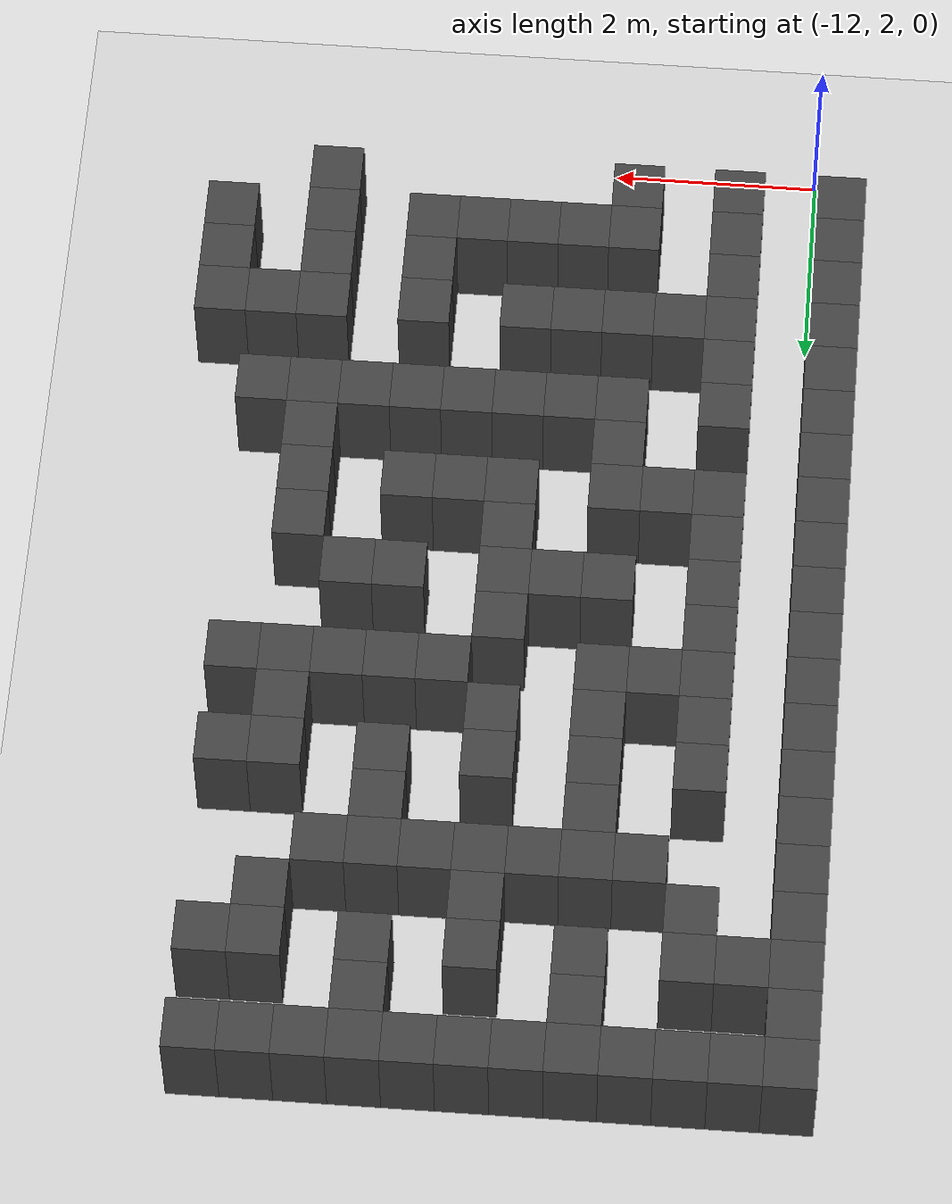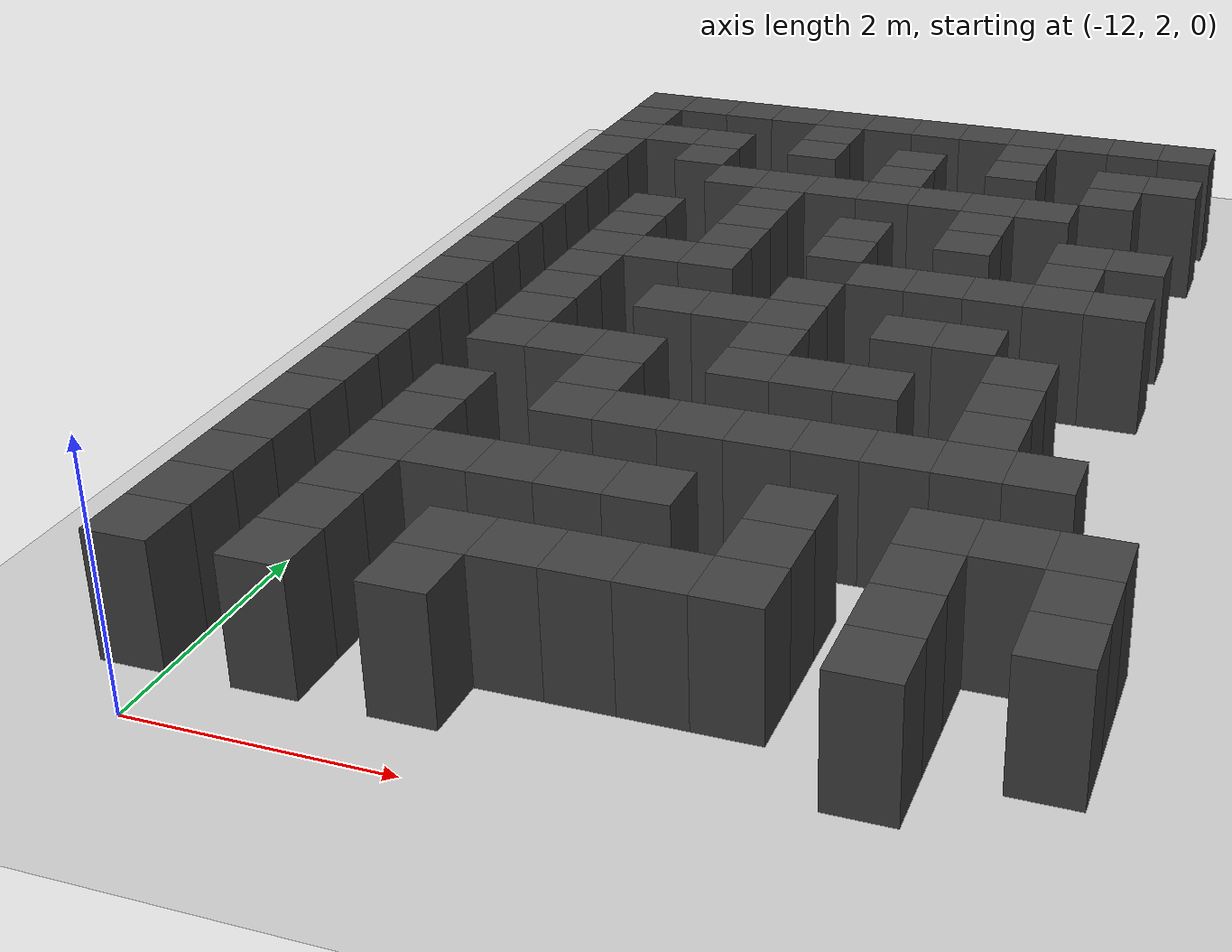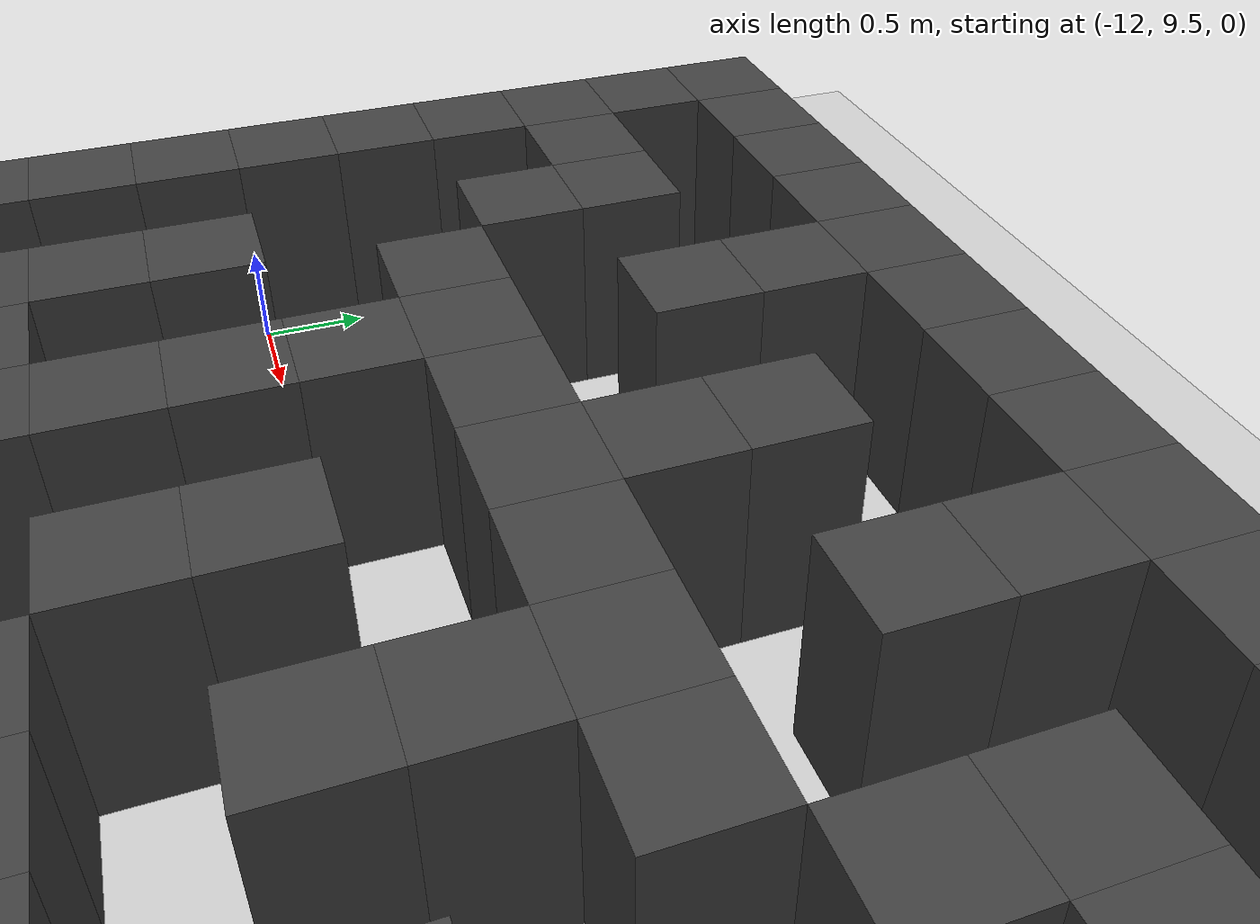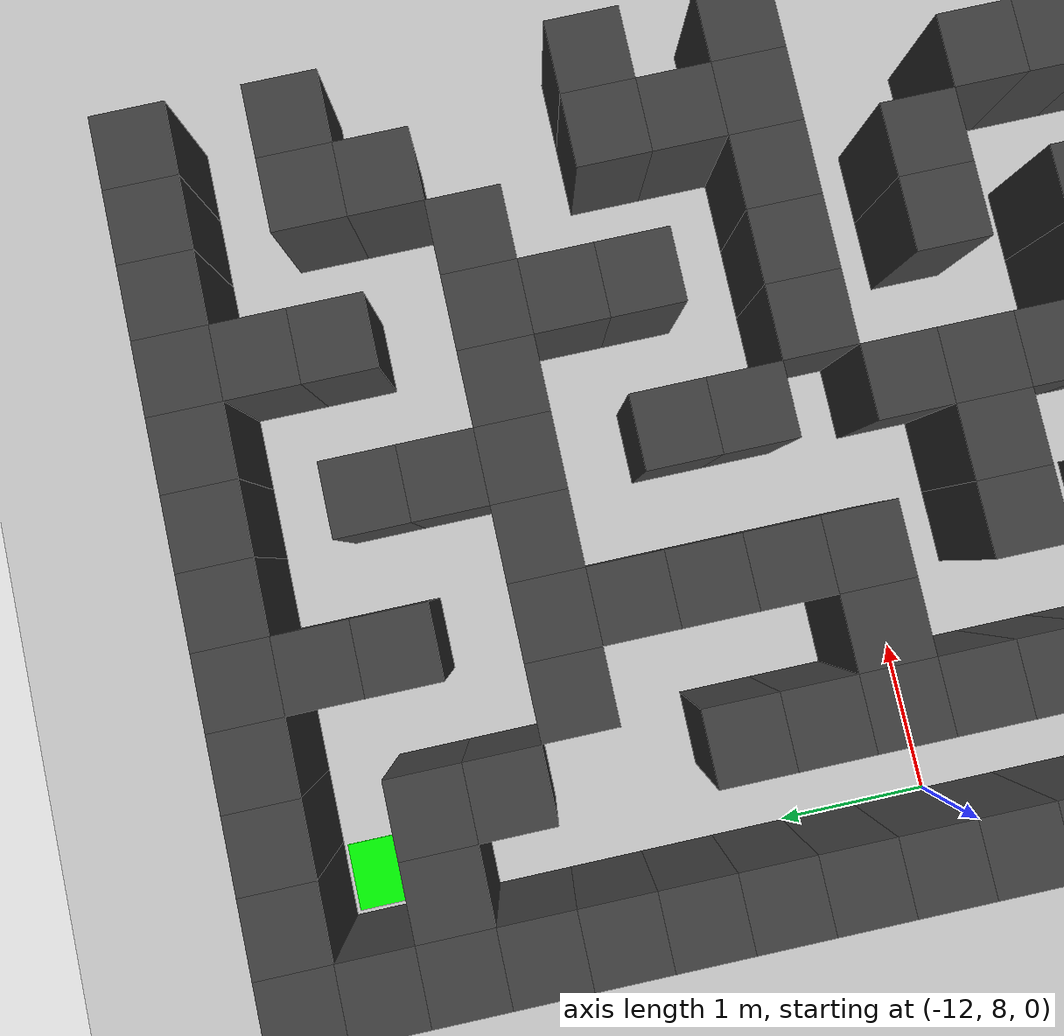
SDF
<sdf version="1.7">
 <world name="map_16783">
  <model name="ground_plane">
   <static>true</static>
   <link name="link">
    <collision name="collision">
     <geometry><plane><normal>0 0 1</normal><size>200 200</size></plane></geometry>
    </collision>
    <visual name="visual">
     <geometry><plane><normal>0 0 1</normal><size>200 200</size></plane></geometry>
     <material><ambient>0.8 0.8 0.8 1</ambient><diffuse>0.8 0.8 0.8 1</diffuse></material>
    </visual>
   </link>
  </model>
  <model name="maze_environment">
   <static>true</static>
   <link name="wall_0">
    <pose>-12.250 12.250 0.500 0 0 0</pose>
    <collision name="col"><geometry><box><size>0.5 0.5 1.0</size></box></geometry></collision>
    <visual name="vis">
     <geometry><box><size>0.5 0.5 1.0</size></box></geometry>
     <material><ambient>0.15 0.15 0.15 1</ambient><diffuse>0.25 0.25 0.25 1</diffuse></material>
    </visual>
   </link>
   <link name="wall_1">
    <pose>-11.750 12.250 0.500 0 0 0</pose>
    <collision name="col"><geometry><box><size>0.5 0.5 1.0</size></box></geometry></collision>
    <visual name="vis">
     <geometry><box><size>0.5 0.5 1.0</size></box></geometry>
     <material><ambient>0.15 0.15 0.15 1</ambient><diffuse>0.25 0.25 0.25 1</diffuse></material>
    </visual>
   </link>
   <link name="wall_2">
    <pose>-11.250 12.250 0.500 0 0 0</pose>
    <collision name="col"><geometry><box><size>0.5 0.5 1.0</size></box></geometry></collision>
    <visual name="vis">
     <geometry><box><size>0.5 0.5 1.0</size></box></geometry>
     <material><ambient>0.15 0.15 0.15 1</ambient><diffuse>0.25 0.25 0.25 1</diffuse></material>
    </visual>
   </link>
   <link name="wall_3">
    <pose>-10.750 12.250 0.500 0 0 0</pose>
    <collision name="col"><geometry><box><size>0.5 0.5 1.0</size></box></geometry></collision>
    <visual name="vis">
     <geometry><box><size>0.5 0.5 1.0</size></box></geometry>
     <material><ambient>0.15 0.15 0.15 1</ambient><diffuse>0.25 0.25 0.25 1</diffuse></material>
    </visual>
   </link>
   <link name="wall_4">
    <pose>-10.250 12.250 0.500 0 0 0</pose>
    <collision name="col"><geometry><box><size>0.5 0.5 1.0</size></box></geometry></collision>
    <visual name="vis">
     <geometry><box><size>0.5 0.5 1.0</size></box></geometry>
     <material><ambient>0.15 0.15 0.15 1</ambient><diffuse>0.25 0.25 0.25 1</diffuse></material>
    </visual>
   </link>
   <link name="wall_5">
    <pose>-9.750 12.250 0.500 0 0 0</pose>
    <collision name="col"><geometry><box><size>0.5 0.5 1.0</size></box></geometry></collision>
    <visual name="vis">
     <geometry><box><size>0.5 0.5 1.0</size></box></geometry>
     <material><ambient>0.15 0.15 0.15 1</ambient><diffuse>0.25 0.25 0.25 1</diffuse></material>
    </visual>
   </link>
   <link name="wall_6">
    <pose>-9.250 12.250 0.500 0 0 0</pose>
    <collision name="col"><geometry><box><size>0.5 0.5 1.0</size></box></geometry></collision>
    <visual name="vis">
     <geometry><box><size>0.5 0.5 1.0</size></box></geometry>
     <material><ambient>0.15 0.15 0.15 1</ambient><diffuse>0.25 0.25 0.25 1</diffuse></material>
    </visual>
   </link>
   <link name="wall_7">
    <pose>-8.750 12.250 0.500 0 0 0</pose>
    <collision name="col"><geometry><box><size>0.5 0.5 1.0</size></box></geometry></collision>
    <visual name="vis">
     <geometry><box><size>0.5 0.5 1.0</size></box></geometry>
     <material><ambient>0.15 0.15 0.15 1</ambient><diffuse>0.25 0.25 0.25 1</diffuse></material>
    </visual>
   </link>
   <link name="wall_8">
    <pose>-8.250 12.250 0.500 0 0 0</pose>
    <collision name="col"><geometry><box><size>0.5 0.5 1.0</size></box></geometry></collision>
    <visual name="vis">
     <geometry><box><size>0.5 0.5 1.0</size></box></geometry>
     <material><ambient>0.15 0.15 0.15 1</ambient><diffuse>0.25 0.25 0.25 1</diffuse></material>
    </visual>
   </link>
   <link name="wall_9">
    <pose>-7.750 12.250 0.500 0 0 0</pose>
    <collision name="col"><geometry><box><size>0.5 0.5 1.0</size></box></geometry></collision>
    <visual name="vis">
     <geometry><box><size>0.5 0.5 1.0</size></box></geometry>
     <material><ambient>0.15 0.15 0.15 1</ambient><diffuse>0.25 0.25 0.25 1</diffuse></material>
    </visual>
   </link>
   <link name="wall_10">
    <pose>-7.250 12.250 0.500 0 0 0</pose>
    <collision name="col"><geometry><box><size>0.5 0.5 1.0</size></box></geometry></collision>
    <visual name="vis">
     <geometry><box><size>0.5 0.5 1.0</size></box></geometry>
     <material><ambient>0.15 0.15 0.15 1</ambient><diffuse>0.25 0.25 0.25 1</diffuse></material>
    </visual>
   </link>
   <link name="wall_11">
    <pose>-6.750 12.250 0.500 0 0 0</pose>
    <collision name="col"><geometry><box><size>0.5 0.5 1.0</size></box></geometry></collision>
    <visual name="vis">
     <geometry><box><size>0.5 0.5 1.0</size></box></geometry>
     <material><ambient>0.15 0.15 0.15 1</ambient><diffuse>0.25 0.25 0.25 1</diffuse></material>
    </visual>
   </link>
   <link name="wall_50">
    <pose>-12.250 11.750 0.500 0 0 0</pose>
    <collision name="col"><geometry><box><size>0.5 0.5 1.0</size></box></geometry></collision>
    <visual name="vis">
     <geometry><box><size>0.5 0.5 1.0</size></box></geometry>
     <material><ambient>0.15 0.15 0.15 1</ambient><diffuse>0.25 0.25 0.25 1</diffuse></material>
    </visual>
   </link>
   <link name="wall_51">
    <pose>-10.250 11.750 0.500 0 0 0</pose>
    <collision name="col"><geometry><box><size>0.5 0.5 1.0</size></box></geometry></collision>
    <visual name="vis">
     <geometry><box><size>0.5 0.5 1.0</size></box></geometry>
     <material><ambient>0.15 0.15 0.15 1</ambient><diffuse>0.25 0.25 0.25 1</diffuse></material>
    </visual>
   </link>
   <link name="wall_52">
    <pose>-8.250 11.750 0.500 0 0 0</pose>
    <collision name="col"><geometry><box><size>0.5 0.5 1.0</size></box></geometry></collision>
    <visual name="vis">
     <geometry><box><size>0.5 0.5 1.0</size></box></geometry>
     <material><ambient>0.15 0.15 0.15 1</ambient><diffuse>0.25 0.25 0.25 1</diffuse></material>
    </visual>
   </link>
   <link name="wall_60">
    <pose>-12.250 11.250 0.500 0 0 0</pose>
    <collision name="col"><geometry><box><size>0.5 0.5 1.0</size></box></geometry></collision>
    <visual name="vis">
     <geometry><box><size>0.5 0.5 1.0</size></box></geometry>
     <material><ambient>0.15 0.15 0.15 1</ambient><diffuse>0.25 0.25 0.25 1</diffuse></material>
    </visual>
   </link>
   <link name="wall_61">
    <pose>-11.750 11.250 0.500 0 0 0</pose>
    <collision name="col"><geometry><box><size>0.5 0.5 1.0</size></box></geometry></collision>
    <visual name="vis">
     <geometry><box><size>0.5 0.5 1.0</size></box></geometry>
     <material><ambient>0.15 0.15 0.15 1</ambient><diffuse>0.25 0.25 0.25 1</diffuse></material>
    </visual>
   </link>
   <link name="wall_62">
    <pose>-11.250 11.250 0.500 0 0 0</pose>
    <collision name="col"><geometry><box><size>0.5 0.5 1.0</size></box></geometry></collision>
    <visual name="vis">
     <geometry><box><size>0.5 0.5 1.0</size></box></geometry>
     <material><ambient>0.15 0.15 0.15 1</ambient><diffuse>0.25 0.25 0.25 1</diffuse></material>
    </visual>
   </link>
   <link name="wall_63">
    <pose>-10.250 11.250 0.500 0 0 0</pose>
    <collision name="col"><geometry><box><size>0.5 0.5 1.0</size></box></geometry></collision>
    <visual name="vis">
     <geometry><box><size>0.5 0.5 1.0</size></box></geometry>
     <material><ambient>0.15 0.15 0.15 1</ambient><diffuse>0.25 0.25 0.25 1</diffuse></material>
    </visual>
   </link>
   <link name="wall_64">
    <pose>-9.250 11.250 0.500 0 0 0</pose>
    <collision name="col"><geometry><box><size>0.5 0.5 1.0</size></box></geometry></collision>
    <visual name="vis">
     <geometry><box><size>0.5 0.5 1.0</size></box></geometry>
     <material><ambient>0.15 0.15 0.15 1</ambient><diffuse>0.25 0.25 0.25 1</diffuse></material>
    </visual>
   </link>
   <link name="wall_65">
    <pose>-8.250 11.250 0.500 0 0 0</pose>
    <collision name="col"><geometry><box><size>0.5 0.5 1.0</size></box></geometry></collision>
    <visual name="vis">
     <geometry><box><size>0.5 0.5 1.0</size></box></geometry>
     <material><ambient>0.15 0.15 0.15 1</ambient><diffuse>0.25 0.25 0.25 1</diffuse></material>
    </visual>
   </link>
   <link name="wall_66">
    <pose>-7.250 11.250 0.500 0 0 0</pose>
    <collision name="col"><geometry><box><size>0.5 0.5 1.0</size></box></geometry></collision>
    <visual name="vis">
     <geometry><box><size>0.5 0.5 1.0</size></box></geometry>
     <material><ambient>0.15 0.15 0.15 1</ambient><diffuse>0.25 0.25 0.25 1</diffuse></material>
    </visual>
   </link>
   <link name="wall_67">
    <pose>-6.750 11.250 0.500 0 0 0</pose>
    <collision name="col"><geometry><box><size>0.5 0.5 1.0</size></box></geometry></collision>
    <visual name="vis">
     <geometry><box><size>0.5 0.5 1.0</size></box></geometry>
     <material><ambient>0.15 0.15 0.15 1</ambient><diffuse>0.25 0.25 0.25 1</diffuse></material>
    </visual>
   </link>
   <link name="wall_93">
    <pose>-12.250 10.750 0.500 0 0 0</pose>
    <collision name="col"><geometry><box><size>0.5 0.5 1.0</size></box></geometry></collision>
    <visual name="vis">
     <geometry><box><size>0.5 0.5 1.0</size></box></geometry>
     <material><ambient>0.15 0.15 0.15 1</ambient><diffuse>0.25 0.25 0.25 1</diffuse></material>
    </visual>
   </link>
   <link name="wall_94">
    <pose>-11.250 10.750 0.500 0 0 0</pose>
    <collision name="col"><geometry><box><size>0.5 0.5 1.0</size></box></geometry></collision>
    <visual name="vis">
     <geometry><box><size>0.5 0.5 1.0</size></box></geometry>
     <material><ambient>0.15 0.15 0.15 1</ambient><diffuse>0.25 0.25 0.25 1</diffuse></material>
    </visual>
   </link>
   <link name="wall_95">
    <pose>-9.250 10.750 0.500 0 0 0</pose>
    <collision name="col"><geometry><box><size>0.5 0.5 1.0</size></box></geometry></collision>
    <visual name="vis">
     <geometry><box><size>0.5 0.5 1.0</size></box></geometry>
     <material><ambient>0.15 0.15 0.15 1</ambient><diffuse>0.25 0.25 0.25 1</diffuse></material>
    </visual>
   </link>
   <link name="wall_96">
    <pose>-7.250 10.750 0.500 0 0 0</pose>
    <collision name="col"><geometry><box><size>0.5 0.5 1.0</size></box></geometry></collision>
    <visual name="vis">
     <geometry><box><size>0.5 0.5 1.0</size></box></geometry>
     <material><ambient>0.15 0.15 0.15 1</ambient><diffuse>0.25 0.25 0.25 1</diffuse></material>
    </visual>
   </link>
   <link name="wall_107">
    <pose>-12.250 10.250 0.500 0 0 0</pose>
    <collision name="col"><geometry><box><size>0.5 0.5 1.0</size></box></geometry></collision>
    <visual name="vis">
     <geometry><box><size>0.5 0.5 1.0</size></box></geometry>
     <material><ambient>0.15 0.15 0.15 1</ambient><diffuse>0.25 0.25 0.25 1</diffuse></material>
    </visual>
   </link>
   <link name="wall_108">
    <pose>-10.750 10.250 0.500 0 0 0</pose>
    <collision name="col"><geometry><box><size>0.5 0.5 1.0</size></box></geometry></collision>
    <visual name="vis">
     <geometry><box><size>0.5 0.5 1.0</size></box></geometry>
     <material><ambient>0.15 0.15 0.15 1</ambient><diffuse>0.25 0.25 0.25 1</diffuse></material>
    </visual>
   </link>
   <link name="wall_109">
    <pose>-10.250 10.250 0.500 0 0 0</pose>
    <collision name="col"><geometry><box><size>0.5 0.5 1.0</size></box></geometry></collision>
    <visual name="vis">
     <geometry><box><size>0.5 0.5 1.0</size></box></geometry>
     <material><ambient>0.15 0.15 0.15 1</ambient><diffuse>0.25 0.25 0.25 1</diffuse></material>
    </visual>
   </link>
   <link name="wall_110">
    <pose>-9.750 10.250 0.500 0 0 0</pose>
    <collision name="col"><geometry><box><size>0.5 0.5 1.0</size></box></geometry></collision>
    <visual name="vis">
     <geometry><box><size>0.5 0.5 1.0</size></box></geometry>
     <material><ambient>0.15 0.15 0.15 1</ambient><diffuse>0.25 0.25 0.25 1</diffuse></material>
    </visual>
   </link>
   <link name="wall_111">
    <pose>-9.250 10.250 0.500 0 0 0</pose>
    <collision name="col"><geometry><box><size>0.5 0.5 1.0</size></box></geometry></collision>
    <visual name="vis">
     <geometry><box><size>0.5 0.5 1.0</size></box></geometry>
     <material><ambient>0.15 0.15 0.15 1</ambient><diffuse>0.25 0.25 0.25 1</diffuse></material>
    </visual>
   </link>
   <link name="wall_112">
    <pose>-8.750 10.250 0.500 0 0 0</pose>
    <collision name="col"><geometry><box><size>0.5 0.5 1.0</size></box></geometry></collision>
    <visual name="vis">
     <geometry><box><size>0.5 0.5 1.0</size></box></geometry>
     <material><ambient>0.15 0.15 0.15 1</ambient><diffuse>0.25 0.25 0.25 1</diffuse></material>
    </visual>
   </link>
   <link name="wall_113">
    <pose>-8.250 10.250 0.500 0 0 0</pose>
    <collision name="col"><geometry><box><size>0.5 0.5 1.0</size></box></geometry></collision>
    <visual name="vis">
     <geometry><box><size>0.5 0.5 1.0</size></box></geometry>
     <material><ambient>0.15 0.15 0.15 1</ambient><diffuse>0.25 0.25 0.25 1</diffuse></material>
    </visual>
   </link>
   <link name="wall_114">
    <pose>-7.750 10.250 0.500 0 0 0</pose>
    <collision name="col"><geometry><box><size>0.5 0.5 1.0</size></box></geometry></collision>
    <visual name="vis">
     <geometry><box><size>0.5 0.5 1.0</size></box></geometry>
     <material><ambient>0.15 0.15 0.15 1</ambient><diffuse>0.25 0.25 0.25 1</diffuse></material>
    </visual>
   </link>
   <link name="wall_142">
    <pose>-12.250 9.750 0.500 0 0 0</pose>
    <collision name="col"><geometry><box><size>0.5 0.5 1.0</size></box></geometry></collision>
    <visual name="vis">
     <geometry><box><size>0.5 0.5 1.0</size></box></geometry>
     <material><ambient>0.15 0.15 0.15 1</ambient><diffuse>0.25 0.25 0.25 1</diffuse></material>
    </visual>
   </link>
   <link name="wall_143">
    <pose>-10.250 9.750 0.500 0 0 0</pose>
    <collision name="col"><geometry><box><size>0.5 0.5 1.0</size></box></geometry></collision>
    <visual name="vis">
     <geometry><box><size>0.5 0.5 1.0</size></box></geometry>
     <material><ambient>0.15 0.15 0.15 1</ambient><diffuse>0.25 0.25 0.25 1</diffuse></material>
    </visual>
   </link>
   <link name="wall_144">
    <pose>-8.250 9.750 0.500 0 0 0</pose>
    <collision name="col"><geometry><box><size>0.5 0.5 1.0</size></box></geometry></collision>
    <visual name="vis">
     <geometry><box><size>0.5 0.5 1.0</size></box></geometry>
     <material><ambient>0.15 0.15 0.15 1</ambient><diffuse>0.25 0.25 0.25 1</diffuse></material>
    </visual>
   </link>
   <link name="wall_154">
    <pose>-12.250 9.250 0.500 0 0 0</pose>
    <collision name="col"><geometry><box><size>0.5 0.5 1.0</size></box></geometry></collision>
    <visual name="vis">
     <geometry><box><size>0.5 0.5 1.0</size></box></geometry>
     <material><ambient>0.15 0.15 0.15 1</ambient><diffuse>0.25 0.25 0.25 1</diffuse></material>
    </visual>
   </link>
   <link name="wall_155">
    <pose>-11.250 9.250 0.500 0 0 0</pose>
    <collision name="col"><geometry><box><size>0.5 0.5 1.0</size></box></geometry></collision>
    <visual name="vis">
     <geometry><box><size>0.5 0.5 1.0</size></box></geometry>
     <material><ambient>0.15 0.15 0.15 1</ambient><diffuse>0.25 0.25 0.25 1</diffuse></material>
    </visual>
   </link>
   <link name="wall_156">
    <pose>-10.250 9.250 0.500 0 0 0</pose>
    <collision name="col"><geometry><box><size>0.5 0.5 1.0</size></box></geometry></collision>
    <visual name="vis">
     <geometry><box><size>0.5 0.5 1.0</size></box></geometry>
     <material><ambient>0.15 0.15 0.15 1</ambient><diffuse>0.25 0.25 0.25 1</diffuse></material>
    </visual>
   </link>
   <link name="wall_157">
    <pose>-9.250 9.250 0.500 0 0 0</pose>
    <collision name="col"><geometry><box><size>0.5 0.5 1.0</size></box></geometry></collision>
    <visual name="vis">
     <geometry><box><size>0.5 0.5 1.0</size></box></geometry>
     <material><ambient>0.15 0.15 0.15 1</ambient><diffuse>0.25 0.25 0.25 1</diffuse></material>
    </visual>
   </link>
   <link name="wall_158">
    <pose>-8.250 9.250 0.500 0 0 0</pose>
    <collision name="col"><geometry><box><size>0.5 0.5 1.0</size></box></geometry></collision>
    <visual name="vis">
     <geometry><box><size>0.5 0.5 1.0</size></box></geometry>
     <material><ambient>0.15 0.15 0.15 1</ambient><diffuse>0.25 0.25 0.25 1</diffuse></material>
    </visual>
   </link>
   <link name="wall_159">
    <pose>-7.250 9.250 0.500 0 0 0</pose>
    <collision name="col"><geometry><box><size>0.5 0.5 1.0</size></box></geometry></collision>
    <visual name="vis">
     <geometry><box><size>0.5 0.5 1.0</size></box></geometry>
     <material><ambient>0.15 0.15 0.15 1</ambient><diffuse>0.25 0.25 0.25 1</diffuse></material>
    </visual>
   </link>
   <link name="wall_160">
    <pose>-6.750 9.250 0.500 0 0 0</pose>
    <collision name="col"><geometry><box><size>0.5 0.5 1.0</size></box></geometry></collision>
    <visual name="vis">
     <geometry><box><size>0.5 0.5 1.0</size></box></geometry>
     <material><ambient>0.15 0.15 0.15 1</ambient><diffuse>0.25 0.25 0.25 1</diffuse></material>
    </visual>
   </link>
   <link name="wall_188">
    <pose>-12.250 8.750 0.500 0 0 0</pose>
    <collision name="col"><geometry><box><size>0.5 0.5 1.0</size></box></geometry></collision>
    <visual name="vis">
     <geometry><box><size>0.5 0.5 1.0</size></box></geometry>
     <material><ambient>0.15 0.15 0.15 1</ambient><diffuse>0.25 0.25 0.25 1</diffuse></material>
    </visual>
   </link>
   <link name="wall_189">
    <pose>-11.250 8.750 0.500 0 0 0</pose>
    <collision name="col"><geometry><box><size>0.5 0.5 1.0</size></box></geometry></collision>
    <visual name="vis">
     <geometry><box><size>0.5 0.5 1.0</size></box></geometry>
     <material><ambient>0.15 0.15 0.15 1</ambient><diffuse>0.25 0.25 0.25 1</diffuse></material>
    </visual>
   </link>
   <link name="wall_190">
    <pose>-10.250 8.750 0.500 0 0 0</pose>
    <collision name="col"><geometry><box><size>0.5 0.5 1.0</size></box></geometry></collision>
    <visual name="vis">
     <geometry><box><size>0.5 0.5 1.0</size></box></geometry>
     <material><ambient>0.15 0.15 0.15 1</ambient><diffuse>0.25 0.25 0.25 1</diffuse></material>
    </visual>
   </link>
   <link name="wall_191">
    <pose>-9.250 8.750 0.500 0 0 0</pose>
    <collision name="col"><geometry><box><size>0.5 0.5 1.0</size></box></geometry></collision>
    <visual name="vis">
     <geometry><box><size>0.5 0.5 1.0</size></box></geometry>
     <material><ambient>0.15 0.15 0.15 1</ambient><diffuse>0.25 0.25 0.25 1</diffuse></material>
    </visual>
   </link>
   <link name="wall_192">
    <pose>-7.250 8.750 0.500 0 0 0</pose>
    <collision name="col"><geometry><box><size>0.5 0.5 1.0</size></box></geometry></collision>
    <visual name="vis">
     <geometry><box><size>0.5 0.5 1.0</size></box></geometry>
     <material><ambient>0.15 0.15 0.15 1</ambient><diffuse>0.25 0.25 0.25 1</diffuse></material>
    </visual>
   </link>
   <link name="wall_201">
    <pose>-12.250 8.250 0.500 0 0 0</pose>
    <collision name="col"><geometry><box><size>0.5 0.5 1.0</size></box></geometry></collision>
    <visual name="vis">
     <geometry><box><size>0.5 0.5 1.0</size></box></geometry>
     <material><ambient>0.15 0.15 0.15 1</ambient><diffuse>0.25 0.25 0.25 1</diffuse></material>
    </visual>
   </link>
   <link name="wall_202">
    <pose>-11.250 8.250 0.500 0 0 0</pose>
    <collision name="col"><geometry><box><size>0.5 0.5 1.0</size></box></geometry></collision>
    <visual name="vis">
     <geometry><box><size>0.5 0.5 1.0</size></box></geometry>
     <material><ambient>0.15 0.15 0.15 1</ambient><diffuse>0.25 0.25 0.25 1</diffuse></material>
    </visual>
   </link>
   <link name="wall_203">
    <pose>-10.750 8.250 0.500 0 0 0</pose>
    <collision name="col"><geometry><box><size>0.5 0.5 1.0</size></box></geometry></collision>
    <visual name="vis">
     <geometry><box><size>0.5 0.5 1.0</size></box></geometry>
     <material><ambient>0.15 0.15 0.15 1</ambient><diffuse>0.25 0.25 0.25 1</diffuse></material>
    </visual>
   </link>
   <link name="wall_204">
    <pose>-10.250 8.250 0.500 0 0 0</pose>
    <collision name="col"><geometry><box><size>0.5 0.5 1.0</size></box></geometry></collision>
    <visual name="vis">
     <geometry><box><size>0.5 0.5 1.0</size></box></geometry>
     <material><ambient>0.15 0.15 0.15 1</ambient><diffuse>0.25 0.25 0.25 1</diffuse></material>
    </visual>
   </link>
   <link name="wall_205">
    <pose>-8.750 8.250 0.500 0 0 0</pose>
    <collision name="col"><geometry><box><size>0.5 0.5 1.0</size></box></geometry></collision>
    <visual name="vis">
     <geometry><box><size>0.5 0.5 1.0</size></box></geometry>
     <material><ambient>0.15 0.15 0.15 1</ambient><diffuse>0.25 0.25 0.25 1</diffuse></material>
    </visual>
   </link>
   <link name="wall_206">
    <pose>-8.250 8.250 0.500 0 0 0</pose>
    <collision name="col"><geometry><box><size>0.5 0.5 1.0</size></box></geometry></collision>
    <visual name="vis">
     <geometry><box><size>0.5 0.5 1.0</size></box></geometry>
     <material><ambient>0.15 0.15 0.15 1</ambient><diffuse>0.25 0.25 0.25 1</diffuse></material>
    </visual>
   </link>
   <link name="wall_207">
    <pose>-7.750 8.250 0.500 0 0 0</pose>
    <collision name="col"><geometry><box><size>0.5 0.5 1.0</size></box></geometry></collision>
    <visual name="vis">
     <geometry><box><size>0.5 0.5 1.0</size></box></geometry>
     <material><ambient>0.15 0.15 0.15 1</ambient><diffuse>0.25 0.25 0.25 1</diffuse></material>
    </visual>
   </link>
   <link name="wall_208">
    <pose>-7.250 8.250 0.500 0 0 0</pose>
    <collision name="col"><geometry><box><size>0.5 0.5 1.0</size></box></geometry></collision>
    <visual name="vis">
     <geometry><box><size>0.5 0.5 1.0</size></box></geometry>
     <material><ambient>0.15 0.15 0.15 1</ambient><diffuse>0.25 0.25 0.25 1</diffuse></material>
    </visual>
   </link>
   <link name="wall_209">
    <pose>-6.750 8.250 0.500 0 0 0</pose>
    <collision name="col"><geometry><box><size>0.5 0.5 1.0</size></box></geometry></collision>
    <visual name="vis">
     <geometry><box><size>0.5 0.5 1.0</size></box></geometry>
     <material><ambient>0.15 0.15 0.15 1</ambient><diffuse>0.25 0.25 0.25 1</diffuse></material>
    </visual>
   </link>
   <link name="wall_236">
    <pose>-12.250 7.750 0.500 0 0 0</pose>
    <collision name="col"><geometry><box><size>0.5 0.5 1.0</size></box></geometry></collision>
    <visual name="vis">
     <geometry><box><size>0.5 0.5 1.0</size></box></geometry>
     <material><ambient>0.15 0.15 0.15 1</ambient><diffuse>0.25 0.25 0.25 1</diffuse></material>
    </visual>
   </link>
   <link name="wall_237">
    <pose>-11.250 7.750 0.500 0 0 0</pose>
    <collision name="col"><geometry><box><size>0.5 0.5 1.0</size></box></geometry></collision>
    <visual name="vis">
     <geometry><box><size>0.5 0.5 1.0</size></box></geometry>
     <material><ambient>0.15 0.15 0.15 1</ambient><diffuse>0.25 0.25 0.25 1</diffuse></material>
    </visual>
   </link>
   <link name="wall_238">
    <pose>-9.250 7.750 0.500 0 0 0</pose>
    <collision name="col"><geometry><box><size>0.5 0.5 1.0</size></box></geometry></collision>
    <visual name="vis">
     <geometry><box><size>0.5 0.5 1.0</size></box></geometry>
     <material><ambient>0.15 0.15 0.15 1</ambient><diffuse>0.25 0.25 0.25 1</diffuse></material>
    </visual>
   </link>
   <link name="wall_250">
    <pose>-12.250 7.250 0.500 0 0 0</pose>
    <collision name="col"><geometry><box><size>0.5 0.5 1.0</size></box></geometry></collision>
    <visual name="vis">
     <geometry><box><size>0.5 0.5 1.0</size></box></geometry>
     <material><ambient>0.15 0.15 0.15 1</ambient><diffuse>0.25 0.25 0.25 1</diffuse></material>
    </visual>
   </link>
   <link name="wall_251">
    <pose>-11.250 7.250 0.500 0 0 0</pose>
    <collision name="col"><geometry><box><size>0.5 0.5 1.0</size></box></geometry></collision>
    <visual name="vis">
     <geometry><box><size>0.5 0.5 1.0</size></box></geometry>
     <material><ambient>0.15 0.15 0.15 1</ambient><diffuse>0.25 0.25 0.25 1</diffuse></material>
    </visual>
   </link>
   <link name="wall_252">
    <pose>-10.250 7.250 0.500 0 0 0</pose>
    <collision name="col"><geometry><box><size>0.5 0.5 1.0</size></box></geometry></collision>
    <visual name="vis">
     <geometry><box><size>0.5 0.5 1.0</size></box></geometry>
     <material><ambient>0.15 0.15 0.15 1</ambient><diffuse>0.25 0.25 0.25 1</diffuse></material>
    </visual>
   </link>
   <link name="wall_253">
    <pose>-9.750 7.250 0.500 0 0 0</pose>
    <collision name="col"><geometry><box><size>0.5 0.5 1.0</size></box></geometry></collision>
    <visual name="vis">
     <geometry><box><size>0.5 0.5 1.0</size></box></geometry>
     <material><ambient>0.15 0.15 0.15 1</ambient><diffuse>0.25 0.25 0.25 1</diffuse></material>
    </visual>
   </link>
   <link name="wall_254">
    <pose>-9.250 7.250 0.500 0 0 0</pose>
    <collision name="col"><geometry><box><size>0.5 0.5 1.0</size></box></geometry></collision>
    <visual name="vis">
     <geometry><box><size>0.5 0.5 1.0</size></box></geometry>
     <material><ambient>0.15 0.15 0.15 1</ambient><diffuse>0.25 0.25 0.25 1</diffuse></material>
    </visual>
   </link>
   <link name="wall_255">
    <pose>-8.250 7.250 0.500 0 0 0</pose>
    <collision name="col"><geometry><box><size>0.5 0.5 1.0</size></box></geometry></collision>
    <visual name="vis">
     <geometry><box><size>0.5 0.5 1.0</size></box></geometry>
     <material><ambient>0.15 0.15 0.15 1</ambient><diffuse>0.25 0.25 0.25 1</diffuse></material>
    </visual>
   </link>
   <link name="wall_256">
    <pose>-7.750 7.250 0.500 0 0 0</pose>
    <collision name="col"><geometry><box><size>0.5 0.5 1.0</size></box></geometry></collision>
    <visual name="vis">
     <geometry><box><size>0.5 0.5 1.0</size></box></geometry>
     <material><ambient>0.15 0.15 0.15 1</ambient><diffuse>0.25 0.25 0.25 1</diffuse></material>
    </visual>
   </link>
   <link name="wall_281">
    <pose>-12.250 6.750 0.500 0 0 0</pose>
    <collision name="col"><geometry><box><size>0.5 0.5 1.0</size></box></geometry></collision>
    <visual name="vis">
     <geometry><box><size>0.5 0.5 1.0</size></box></geometry>
     <material><ambient>0.15 0.15 0.15 1</ambient><diffuse>0.25 0.25 0.25 1</diffuse></material>
    </visual>
   </link>
   <link name="wall_282">
    <pose>-11.250 6.750 0.500 0 0 0</pose>
    <collision name="col"><geometry><box><size>0.5 0.5 1.0</size></box></geometry></collision>
    <visual name="vis">
     <geometry><box><size>0.5 0.5 1.0</size></box></geometry>
     <material><ambient>0.15 0.15 0.15 1</ambient><diffuse>0.25 0.25 0.25 1</diffuse></material>
    </visual>
   </link>
   <link name="wall_283">
    <pose>-9.250 6.750 0.500 0 0 0</pose>
    <collision name="col"><geometry><box><size>0.5 0.5 1.0</size></box></geometry></collision>
    <visual name="vis">
     <geometry><box><size>0.5 0.5 1.0</size></box></geometry>
     <material><ambient>0.15 0.15 0.15 1</ambient><diffuse>0.25 0.25 0.25 1</diffuse></material>
    </visual>
   </link>
   <link name="wall_284">
    <pose>-7.250 6.750 0.500 0 0 0</pose>
    <collision name="col"><geometry><box><size>0.5 0.5 1.0</size></box></geometry></collision>
    <visual name="vis">
     <geometry><box><size>0.5 0.5 1.0</size></box></geometry>
     <material><ambient>0.15 0.15 0.15 1</ambient><diffuse>0.25 0.25 0.25 1</diffuse></material>
    </visual>
   </link>
   <link name="wall_296">
    <pose>-12.250 6.250 0.500 0 0 0</pose>
    <collision name="col"><geometry><box><size>0.5 0.5 1.0</size></box></geometry></collision>
    <visual name="vis">
     <geometry><box><size>0.5 0.5 1.0</size></box></geometry>
     <material><ambient>0.15 0.15 0.15 1</ambient><diffuse>0.25 0.25 0.25 1</diffuse></material>
    </visual>
   </link>
   <link name="wall_297">
    <pose>-11.250 6.250 0.500 0 0 0</pose>
    <collision name="col"><geometry><box><size>0.5 0.5 1.0</size></box></geometry></collision>
    <visual name="vis">
     <geometry><box><size>0.5 0.5 1.0</size></box></geometry>
     <material><ambient>0.15 0.15 0.15 1</ambient><diffuse>0.25 0.25 0.25 1</diffuse></material>
    </visual>
   </link>
   <link name="wall_298">
    <pose>-10.750 6.250 0.500 0 0 0</pose>
    <collision name="col"><geometry><box><size>0.5 0.5 1.0</size></box></geometry></collision>
    <visual name="vis">
     <geometry><box><size>0.5 0.5 1.0</size></box></geometry>
     <material><ambient>0.15 0.15 0.15 1</ambient><diffuse>0.25 0.25 0.25 1</diffuse></material>
    </visual>
   </link>
   <link name="wall_299">
    <pose>-10.250 6.250 0.500 0 0 0</pose>
    <collision name="col"><geometry><box><size>0.5 0.5 1.0</size></box></geometry></collision>
    <visual name="vis">
     <geometry><box><size>0.5 0.5 1.0</size></box></geometry>
     <material><ambient>0.15 0.15 0.15 1</ambient><diffuse>0.25 0.25 0.25 1</diffuse></material>
    </visual>
   </link>
   <link name="wall_300">
    <pose>-9.250 6.250 0.500 0 0 0</pose>
    <collision name="col"><geometry><box><size>0.5 0.5 1.0</size></box></geometry></collision>
    <visual name="vis">
     <geometry><box><size>0.5 0.5 1.0</size></box></geometry>
     <material><ambient>0.15 0.15 0.15 1</ambient><diffuse>0.25 0.25 0.25 1</diffuse></material>
    </visual>
   </link>
   <link name="wall_301">
    <pose>-8.750 6.250 0.500 0 0 0</pose>
    <collision name="col"><geometry><box><size>0.5 0.5 1.0</size></box></geometry></collision>
    <visual name="vis">
     <geometry><box><size>0.5 0.5 1.0</size></box></geometry>
     <material><ambient>0.15 0.15 0.15 1</ambient><diffuse>0.25 0.25 0.25 1</diffuse></material>
    </visual>
   </link>
   <link name="wall_302">
    <pose>-8.250 6.250 0.500 0 0 0</pose>
    <collision name="col"><geometry><box><size>0.5 0.5 1.0</size></box></geometry></collision>
    <visual name="vis">
     <geometry><box><size>0.5 0.5 1.0</size></box></geometry>
     <material><ambient>0.15 0.15 0.15 1</ambient><diffuse>0.25 0.25 0.25 1</diffuse></material>
    </visual>
   </link>
   <link name="wall_303">
    <pose>-7.250 6.250 0.500 0 0 0</pose>
    <collision name="col"><geometry><box><size>0.5 0.5 1.0</size></box></geometry></collision>
    <visual name="vis">
     <geometry><box><size>0.5 0.5 1.0</size></box></geometry>
     <material><ambient>0.15 0.15 0.15 1</ambient><diffuse>0.25 0.25 0.25 1</diffuse></material>
    </visual>
   </link>
   <link name="wall_332">
    <pose>-12.250 5.750 0.500 0 0 0</pose>
    <collision name="col"><geometry><box><size>0.5 0.5 1.0</size></box></geometry></collision>
    <visual name="vis">
     <geometry><box><size>0.5 0.5 1.0</size></box></geometry>
     <material><ambient>0.15 0.15 0.15 1</ambient><diffuse>0.25 0.25 0.25 1</diffuse></material>
    </visual>
   </link>
   <link name="wall_333">
    <pose>-10.250 5.750 0.500 0 0 0</pose>
    <collision name="col"><geometry><box><size>0.5 0.5 1.0</size></box></geometry></collision>
    <visual name="vis">
     <geometry><box><size>0.5 0.5 1.0</size></box></geometry>
     <material><ambient>0.15 0.15 0.15 1</ambient><diffuse>0.25 0.25 0.25 1</diffuse></material>
    </visual>
   </link>
   <link name="wall_334">
    <pose>-7.250 5.750 0.500 0 0 0</pose>
    <collision name="col"><geometry><box><size>0.5 0.5 1.0</size></box></geometry></collision>
    <visual name="vis">
     <geometry><box><size>0.5 0.5 1.0</size></box></geometry>
     <material><ambient>0.15 0.15 0.15 1</ambient><diffuse>0.25 0.25 0.25 1</diffuse></material>
    </visual>
   </link>
   <link name="wall_343">
    <pose>-12.250 5.250 0.500 0 0 0</pose>
    <collision name="col"><geometry><box><size>0.5 0.5 1.0</size></box></geometry></collision>
    <visual name="vis">
     <geometry><box><size>0.5 0.5 1.0</size></box></geometry>
     <material><ambient>0.15 0.15 0.15 1</ambient><diffuse>0.25 0.25 0.25 1</diffuse></material>
    </visual>
   </link>
   <link name="wall_344">
    <pose>-11.250 5.250 0.500 0 0 0</pose>
    <collision name="col"><geometry><box><size>0.5 0.5 1.0</size></box></geometry></collision>
    <visual name="vis">
     <geometry><box><size>0.5 0.5 1.0</size></box></geometry>
     <material><ambient>0.15 0.15 0.15 1</ambient><diffuse>0.25 0.25 0.25 1</diffuse></material>
    </visual>
   </link>
   <link name="wall_345">
    <pose>-10.250 5.250 0.500 0 0 0</pose>
    <collision name="col"><geometry><box><size>0.5 0.5 1.0</size></box></geometry></collision>
    <visual name="vis">
     <geometry><box><size>0.5 0.5 1.0</size></box></geometry>
     <material><ambient>0.15 0.15 0.15 1</ambient><diffuse>0.25 0.25 0.25 1</diffuse></material>
    </visual>
   </link>
   <link name="wall_346">
    <pose>-9.750 5.250 0.500 0 0 0</pose>
    <collision name="col"><geometry><box><size>0.5 0.5 1.0</size></box></geometry></collision>
    <visual name="vis">
     <geometry><box><size>0.5 0.5 1.0</size></box></geometry>
     <material><ambient>0.15 0.15 0.15 1</ambient><diffuse>0.25 0.25 0.25 1</diffuse></material>
    </visual>
   </link>
   <link name="wall_347">
    <pose>-9.250 5.250 0.500 0 0 0</pose>
    <collision name="col"><geometry><box><size>0.5 0.5 1.0</size></box></geometry></collision>
    <visual name="vis">
     <geometry><box><size>0.5 0.5 1.0</size></box></geometry>
     <material><ambient>0.15 0.15 0.15 1</ambient><diffuse>0.25 0.25 0.25 1</diffuse></material>
    </visual>
   </link>
   <link name="wall_348">
    <pose>-8.750 5.250 0.500 0 0 0</pose>
    <collision name="col"><geometry><box><size>0.5 0.5 1.0</size></box></geometry></collision>
    <visual name="vis">
     <geometry><box><size>0.5 0.5 1.0</size></box></geometry>
     <material><ambient>0.15 0.15 0.15 1</ambient><diffuse>0.25 0.25 0.25 1</diffuse></material>
    </visual>
   </link>
   <link name="wall_349">
    <pose>-8.250 5.250 0.500 0 0 0</pose>
    <collision name="col"><geometry><box><size>0.5 0.5 1.0</size></box></geometry></collision>
    <visual name="vis">
     <geometry><box><size>0.5 0.5 1.0</size></box></geometry>
     <material><ambient>0.15 0.15 0.15 1</ambient><diffuse>0.25 0.25 0.25 1</diffuse></material>
    </visual>
   </link>
   <link name="wall_350">
    <pose>-7.750 5.250 0.500 0 0 0</pose>
    <collision name="col"><geometry><box><size>0.5 0.5 1.0</size></box></geometry></collision>
    <visual name="vis">
     <geometry><box><size>0.5 0.5 1.0</size></box></geometry>
     <material><ambient>0.15 0.15 0.15 1</ambient><diffuse>0.25 0.25 0.25 1</diffuse></material>
    </visual>
   </link>
   <link name="wall_351">
    <pose>-7.250 5.250 0.500 0 0 0</pose>
    <collision name="col"><geometry><box><size>0.5 0.5 1.0</size></box></geometry></collision>
    <visual name="vis">
     <geometry><box><size>0.5 0.5 1.0</size></box></geometry>
     <material><ambient>0.15 0.15 0.15 1</ambient><diffuse>0.25 0.25 0.25 1</diffuse></material>
    </visual>
   </link>
   <link name="wall_352">
    <pose>-6.750 5.250 0.500 0 0 0</pose>
    <collision name="col"><geometry><box><size>0.5 0.5 1.0</size></box></geometry></collision>
    <visual name="vis">
     <geometry><box><size>0.5 0.5 1.0</size></box></geometry>
     <material><ambient>0.15 0.15 0.15 1</ambient><diffuse>0.25 0.25 0.25 1</diffuse></material>
    </visual>
   </link>
   <link name="wall_383">
    <pose>-12.250 4.750 0.500 0 0 0</pose>
    <collision name="col"><geometry><box><size>0.5 0.5 1.0</size></box></geometry></collision>
    <visual name="vis">
     <geometry><box><size>0.5 0.5 1.0</size></box></geometry>
     <material><ambient>0.15 0.15 0.15 1</ambient><diffuse>0.25 0.25 0.25 1</diffuse></material>
    </visual>
   </link>
   <link name="wall_384">
    <pose>-11.250 4.750 0.500 0 0 0</pose>
    <collision name="col"><geometry><box><size>0.5 0.5 1.0</size></box></geometry></collision>
    <visual name="vis">
     <geometry><box><size>0.5 0.5 1.0</size></box></geometry>
     <material><ambient>0.15 0.15 0.15 1</ambient><diffuse>0.25 0.25 0.25 1</diffuse></material>
    </visual>
   </link>
   <link name="wall_393">
    <pose>-12.250 4.250 0.500 0 0 0</pose>
    <collision name="col"><geometry><box><size>0.5 0.5 1.0</size></box></geometry></collision>
    <visual name="vis">
     <geometry><box><size>0.5 0.5 1.0</size></box></geometry>
     <material><ambient>0.15 0.15 0.15 1</ambient><diffuse>0.25 0.25 0.25 1</diffuse></material>
    </visual>
   </link>
   <link name="wall_394">
    <pose>-11.250 4.250 0.500 0 0 0</pose>
    <collision name="col"><geometry><box><size>0.5 0.5 1.0</size></box></geometry></collision>
    <visual name="vis">
     <geometry><box><size>0.5 0.5 1.0</size></box></geometry>
     <material><ambient>0.15 0.15 0.15 1</ambient><diffuse>0.25 0.25 0.25 1</diffuse></material>
    </visual>
   </link>
   <link name="wall_395">
    <pose>-10.750 4.250 0.500 0 0 0</pose>
    <collision name="col"><geometry><box><size>0.5 0.5 1.0</size></box></geometry></collision>
    <visual name="vis">
     <geometry><box><size>0.5 0.5 1.0</size></box></geometry>
     <material><ambient>0.15 0.15 0.15 1</ambient><diffuse>0.25 0.25 0.25 1</diffuse></material>
    </visual>
   </link>
   <link name="wall_396">
    <pose>-10.250 4.250 0.500 0 0 0</pose>
    <collision name="col"><geometry><box><size>0.5 0.5 1.0</size></box></geometry></collision>
    <visual name="vis">
     <geometry><box><size>0.5 0.5 1.0</size></box></geometry>
     <material><ambient>0.15 0.15 0.15 1</ambient><diffuse>0.25 0.25 0.25 1</diffuse></material>
    </visual>
   </link>
   <link name="wall_397">
    <pose>-9.750 4.250 0.500 0 0 0</pose>
    <collision name="col"><geometry><box><size>0.5 0.5 1.0</size></box></geometry></collision>
    <visual name="vis">
     <geometry><box><size>0.5 0.5 1.0</size></box></geometry>
     <material><ambient>0.15 0.15 0.15 1</ambient><diffuse>0.25 0.25 0.25 1</diffuse></material>
    </visual>
   </link>
   <link name="wall_398">
    <pose>-9.250 4.250 0.500 0 0 0</pose>
    <collision name="col"><geometry><box><size>0.5 0.5 1.0</size></box></geometry></collision>
    <visual name="vis">
     <geometry><box><size>0.5 0.5 1.0</size></box></geometry>
     <material><ambient>0.15 0.15 0.15 1</ambient><diffuse>0.25 0.25 0.25 1</diffuse></material>
    </visual>
   </link>
   <link name="wall_399">
    <pose>-8.250 4.250 0.500 0 0 0</pose>
    <collision name="col"><geometry><box><size>0.5 0.5 1.0</size></box></geometry></collision>
    <visual name="vis">
     <geometry><box><size>0.5 0.5 1.0</size></box></geometry>
     <material><ambient>0.15 0.15 0.15 1</ambient><diffuse>0.25 0.25 0.25 1</diffuse></material>
    </visual>
   </link>
   <link name="wall_400">
    <pose>-7.250 4.250 0.500 0 0 0</pose>
    <collision name="col"><geometry><box><size>0.5 0.5 1.0</size></box></geometry></collision>
    <visual name="vis">
     <geometry><box><size>0.5 0.5 1.0</size></box></geometry>
     <material><ambient>0.15 0.15 0.15 1</ambient><diffuse>0.25 0.25 0.25 1</diffuse></material>
    </visual>
   </link>
   <link name="wall_401">
    <pose>-6.750 4.250 0.500 0 0 0</pose>
    <collision name="col"><geometry><box><size>0.5 0.5 1.0</size></box></geometry></collision>
    <visual name="vis">
     <geometry><box><size>0.5 0.5 1.0</size></box></geometry>
     <material><ambient>0.15 0.15 0.15 1</ambient><diffuse>0.25 0.25 0.25 1</diffuse></material>
    </visual>
   </link>
   <link name="wall_402">
    <pose>-6.250 4.250 0.500 0 0 0</pose>
    <collision name="col"><geometry><box><size>0.5 0.5 1.0</size></box></geometry></collision>
    <visual name="vis">
     <geometry><box><size>0.5 0.5 1.0</size></box></geometry>
     <material><ambient>0.15 0.15 0.15 1</ambient><diffuse>0.25 0.25 0.25 1</diffuse></material>
    </visual>
   </link>
   <link name="wall_423">
    <pose>-12.250 3.750 0.500 0 0 0</pose>
    <collision name="col"><geometry><box><size>0.5 0.5 1.0</size></box></geometry></collision>
    <visual name="vis">
     <geometry><box><size>0.5 0.5 1.0</size></box></geometry>
     <material><ambient>0.15 0.15 0.15 1</ambient><diffuse>0.25 0.25 0.25 1</diffuse></material>
    </visual>
   </link>
   <link name="wall_424">
    <pose>-11.250 3.750 0.500 0 0 0</pose>
    <collision name="col"><geometry><box><size>0.5 0.5 1.0</size></box></geometry></collision>
    <visual name="vis">
     <geometry><box><size>0.5 0.5 1.0</size></box></geometry>
     <material><ambient>0.15 0.15 0.15 1</ambient><diffuse>0.25 0.25 0.25 1</diffuse></material>
    </visual>
   </link>
   <link name="wall_425">
    <pose>-8.250 3.750 0.500 0 0 0</pose>
    <collision name="col"><geometry><box><size>0.5 0.5 1.0</size></box></geometry></collision>
    <visual name="vis">
     <geometry><box><size>0.5 0.5 1.0</size></box></geometry>
     <material><ambient>0.15 0.15 0.15 1</ambient><diffuse>0.25 0.25 0.25 1</diffuse></material>
    </visual>
   </link>
   <link name="wall_426">
    <pose>-7.250 3.750 0.500 0 0 0</pose>
    <collision name="col"><geometry><box><size>0.5 0.5 1.0</size></box></geometry></collision>
    <visual name="vis">
     <geometry><box><size>0.5 0.5 1.0</size></box></geometry>
     <material><ambient>0.15 0.15 0.15 1</ambient><diffuse>0.25 0.25 0.25 1</diffuse></material>
    </visual>
   </link>
   <link name="wall_427">
    <pose>-6.250 3.750 0.500 0 0 0</pose>
    <collision name="col"><geometry><box><size>0.5 0.5 1.0</size></box></geometry></collision>
    <visual name="vis">
     <geometry><box><size>0.5 0.5 1.0</size></box></geometry>
     <material><ambient>0.15 0.15 0.15 1</ambient><diffuse>0.25 0.25 0.25 1</diffuse></material>
    </visual>
   </link>
   <link name="wall_440">
    <pose>-12.250 3.250 0.500 0 0 0</pose>
    <collision name="col"><geometry><box><size>0.5 0.5 1.0</size></box></geometry></collision>
    <visual name="vis">
     <geometry><box><size>0.5 0.5 1.0</size></box></geometry>
     <material><ambient>0.15 0.15 0.15 1</ambient><diffuse>0.25 0.25 0.25 1</diffuse></material>
    </visual>
   </link>
   <link name="wall_441">
    <pose>-11.250 3.250 0.500 0 0 0</pose>
    <collision name="col"><geometry><box><size>0.5 0.5 1.0</size></box></geometry></collision>
    <visual name="vis">
     <geometry><box><size>0.5 0.5 1.0</size></box></geometry>
     <material><ambient>0.15 0.15 0.15 1</ambient><diffuse>0.25 0.25 0.25 1</diffuse></material>
    </visual>
   </link>
   <link name="wall_442">
    <pose>-10.250 3.250 0.500 0 0 0</pose>
    <collision name="col"><geometry><box><size>0.5 0.5 1.0</size></box></geometry></collision>
    <visual name="vis">
     <geometry><box><size>0.5 0.5 1.0</size></box></geometry>
     <material><ambient>0.15 0.15 0.15 1</ambient><diffuse>0.25 0.25 0.25 1</diffuse></material>
    </visual>
   </link>
   <link name="wall_443">
    <pose>-9.750 3.250 0.500 0 0 0</pose>
    <collision name="col"><geometry><box><size>0.5 0.5 1.0</size></box></geometry></collision>
    <visual name="vis">
     <geometry><box><size>0.5 0.5 1.0</size></box></geometry>
     <material><ambient>0.15 0.15 0.15 1</ambient><diffuse>0.25 0.25 0.25 1</diffuse></material>
    </visual>
   </link>
   <link name="wall_444">
    <pose>-9.250 3.250 0.500 0 0 0</pose>
    <collision name="col"><geometry><box><size>0.5 0.5 1.0</size></box></geometry></collision>
    <visual name="vis">
     <geometry><box><size>0.5 0.5 1.0</size></box></geometry>
     <material><ambient>0.15 0.15 0.15 1</ambient><diffuse>0.25 0.25 0.25 1</diffuse></material>
    </visual>
   </link>
   <link name="wall_445">
    <pose>-8.750 3.250 0.500 0 0 0</pose>
    <collision name="col"><geometry><box><size>0.5 0.5 1.0</size></box></geometry></collision>
    <visual name="vis">
     <geometry><box><size>0.5 0.5 1.0</size></box></geometry>
     <material><ambient>0.15 0.15 0.15 1</ambient><diffuse>0.25 0.25 0.25 1</diffuse></material>
    </visual>
   </link>
   <link name="wall_446">
    <pose>-8.250 3.250 0.500 0 0 0</pose>
    <collision name="col"><geometry><box><size>0.5 0.5 1.0</size></box></geometry></collision>
    <visual name="vis">
     <geometry><box><size>0.5 0.5 1.0</size></box></geometry>
     <material><ambient>0.15 0.15 0.15 1</ambient><diffuse>0.25 0.25 0.25 1</diffuse></material>
    </visual>
   </link>
   <link name="wall_447">
    <pose>-7.250 3.250 0.500 0 0 0</pose>
    <collision name="col"><geometry><box><size>0.5 0.5 1.0</size></box></geometry></collision>
    <visual name="vis">
     <geometry><box><size>0.5 0.5 1.0</size></box></geometry>
     <material><ambient>0.15 0.15 0.15 1</ambient><diffuse>0.25 0.25 0.25 1</diffuse></material>
    </visual>
   </link>
   <link name="wall_448">
    <pose>-6.250 3.250 0.500 0 0 0</pose>
    <collision name="col"><geometry><box><size>0.5 0.5 1.0</size></box></geometry></collision>
    <visual name="vis">
     <geometry><box><size>0.5 0.5 1.0</size></box></geometry>
     <material><ambient>0.15 0.15 0.15 1</ambient><diffuse>0.25 0.25 0.25 1</diffuse></material>
    </visual>
   </link>
   <link name="wall_475">
    <pose>-12.250 2.750 0.500 0 0 0</pose>
    <collision name="col"><geometry><box><size>0.5 0.5 1.0</size></box></geometry></collision>
    <visual name="vis">
     <geometry><box><size>0.5 0.5 1.0</size></box></geometry>
     <material><ambient>0.15 0.15 0.15 1</ambient><diffuse>0.25 0.25 0.25 1</diffuse></material>
    </visual>
   </link>
   <link name="wall_476">
    <pose>-11.250 2.750 0.500 0 0 0</pose>
    <collision name="col"><geometry><box><size>0.5 0.5 1.0</size></box></geometry></collision>
    <visual name="vis">
     <geometry><box><size>0.5 0.5 1.0</size></box></geometry>
     <material><ambient>0.15 0.15 0.15 1</ambient><diffuse>0.25 0.25 0.25 1</diffuse></material>
    </visual>
   </link>
   <link name="wall_477">
    <pose>-10.250 2.750 0.500 0 0 0</pose>
    <collision name="col"><geometry><box><size>0.5 0.5 1.0</size></box></geometry></collision>
    <visual name="vis">
     <geometry><box><size>0.5 0.5 1.0</size></box></geometry>
     <material><ambient>0.15 0.15 0.15 1</ambient><diffuse>0.25 0.25 0.25 1</diffuse></material>
    </visual>
   </link>
   <link name="wall_478">
    <pose>-7.250 2.750 0.500 0 0 0</pose>
    <collision name="col"><geometry><box><size>0.5 0.5 1.0</size></box></geometry></collision>
    <visual name="vis">
     <geometry><box><size>0.5 0.5 1.0</size></box></geometry>
     <material><ambient>0.15 0.15 0.15 1</ambient><diffuse>0.25 0.25 0.25 1</diffuse></material>
    </visual>
   </link>
   <link name="start_zone">
    <pose>-11.750 11.750 0.005 0 0 0</pose>
    <visual name="vis">
     <geometry><box><size>0.45 0.45 0.01</size></box></geometry>
     <material>
      <ambient>0.0 1.0 0.0 1</ambient>
      <diffuse>0.0 1.0 0.0 1</diffuse>
      <emissive>0.00 0.60 0.00 1</emissive>
     </material>
    </visual>
   </link>
  </model>
 </world>
</sdf>
